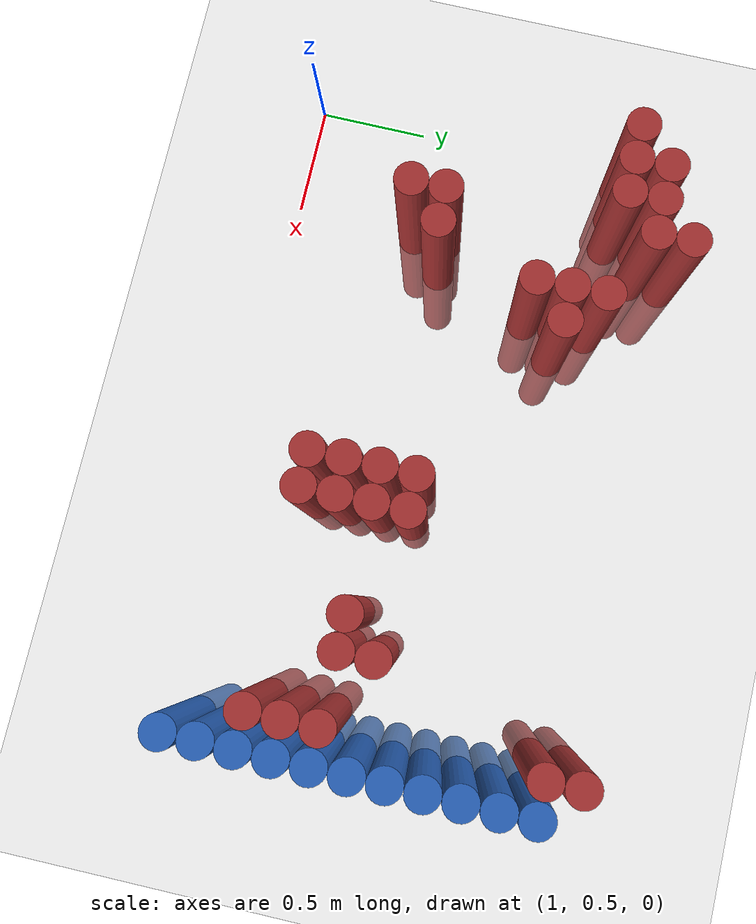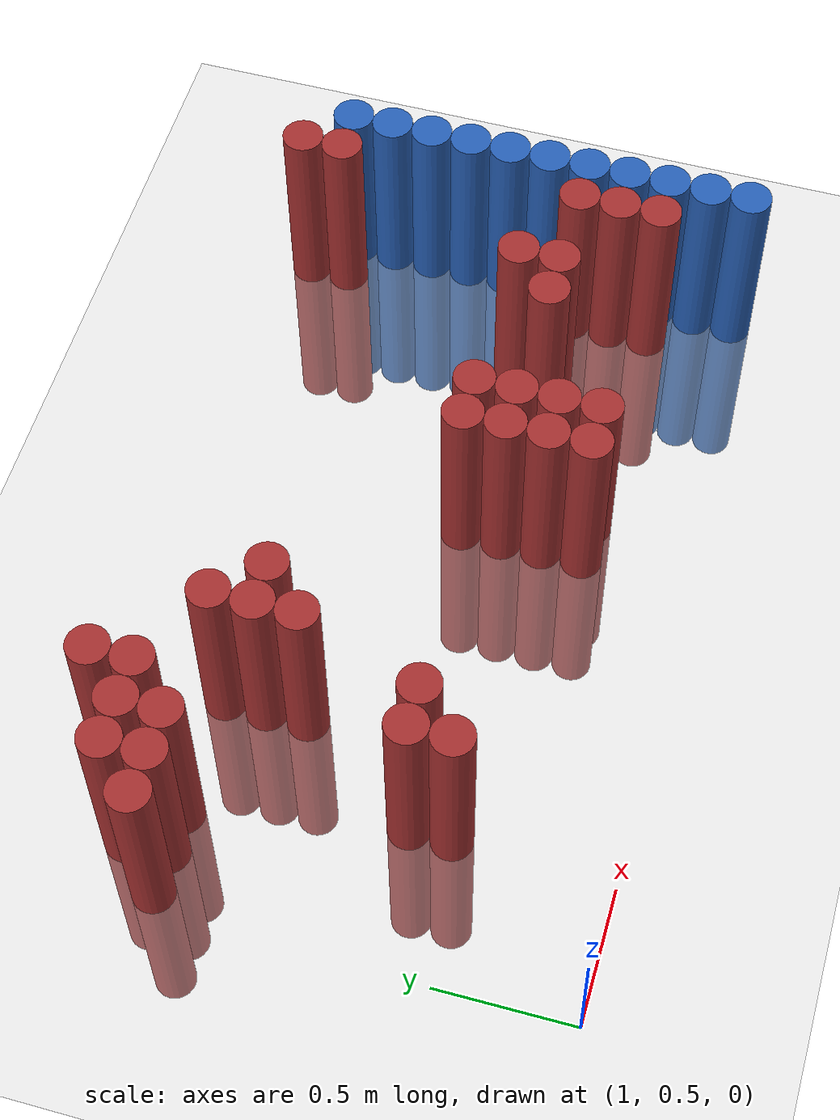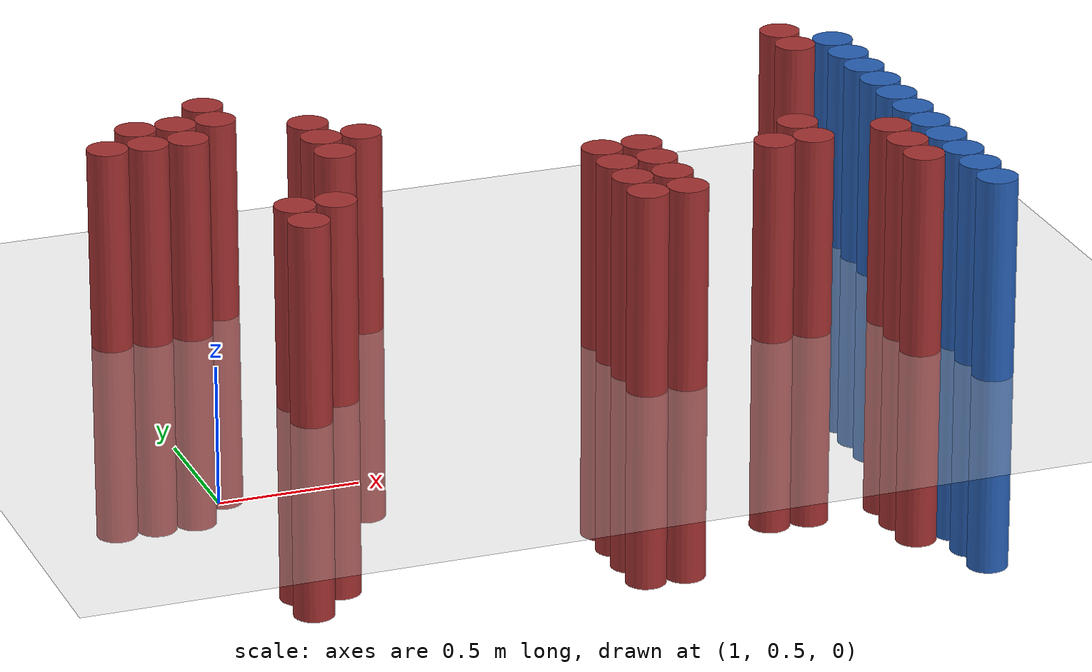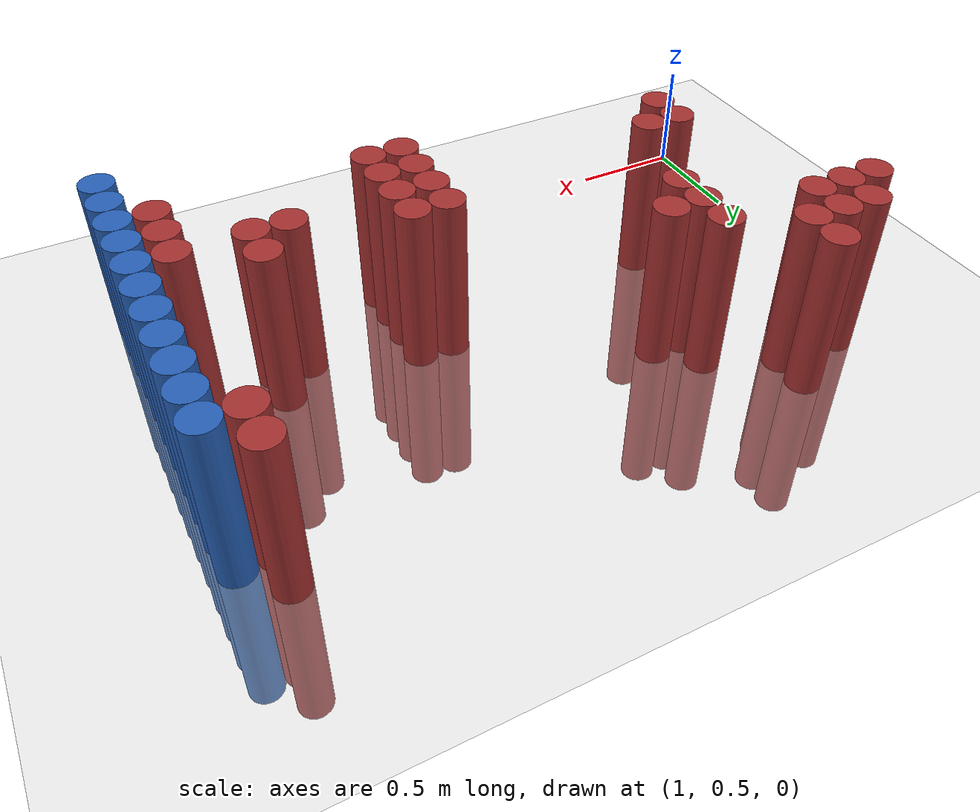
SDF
<sdf version="1.6">
 <world name="default">
  <model name="ground_plane">
   <static>1</static>
   <link name="link">
    <collision name="collision">
     <geometry><plane><normal>0 0 1</normal><size>100 100</size></plane></geometry>
     <surface><friction><ode><mu>100</mu><mu2>50</mu2></ode></friction></surface>
    </collision>
    <visual name="visual">
     <cast_shadows>0</cast_shadows>
     <geometry><plane><normal>0 0 1</normal><size>100 100</size></plane></geometry>
     <material>
      <script><uri>file://media/materials/scripts/gazebo.material</uri><name>Gazebo/Grey</name></script>
     </material>
    </visual>
   </link>
  </model>
  <model name="unit_cylinder_124">
   <static>1</static>
   <pose>3.925000 0.775000 0.000000 0.000000 0.000000 0.000000</pose>
   <link name="link">
    <inertial>
     <mass>1</mass>
     <inertia><ixx>0.145833</ixx><ixy>0</ixy><ixz>0</ixz><iyy>0.145833</iyy><iyz>0</iyz><izz>0.125</izz></inertia>
    </inertial>
    <collision name="collision">
     <geometry><cylinder><radius>0.075000</radius><length>1.5</length></cylinder></geometry>
    </collision>
    <visual name="visual">
     <geometry><cylinder><radius>0.075000</radius><length>1.5</length></cylinder></geometry>
     <material>
      <ambient>0.152000 0.379000 0.720000 1</ambient>
      <diffuse>0.152000 0.379000 0.720000 1</diffuse>
     </material>
     <material>
      <script><name>Gazebo/Grey</name><uri>file://media/materials/scripts/gazebo.material</uri></script>
     </material>
    </visual>
   </link>
  </model>
  <model name="unit_cylinder_126">
   <static>1</static>
   <pose>3.925000 0.925000 0.000000 0.000000 0.000000 0.000000</pose>
   <link name="link">
    <inertial>
     <mass>1</mass>
     <inertia><ixx>0.145833</ixx><ixy>0</ixy><ixz>0</ixz><iyy>0.145833</iyy><iyz>0</iyz><izz>0.125</izz></inertia>
    </inertial>
    <collision name="collision">
     <geometry><cylinder><radius>0.075000</radius><length>1.5</length></cylinder></geometry>
    </collision>
    <visual name="visual">
     <geometry><cylinder><radius>0.075000</radius><length>1.5</length></cylinder></geometry>
     <material>
      <ambient>0.152000 0.379000 0.720000 1</ambient>
      <diffuse>0.152000 0.379000 0.720000 1</diffuse>
     </material>
     <material>
      <script><name>Gazebo/Grey</name><uri>file://media/materials/scripts/gazebo.material</uri></script>
     </material>
    </visual>
   </link>
  </model>
  <model name="unit_cylinder_128">
   <static>1</static>
   <pose>3.925000 1.075000 0.000000 0.000000 0.000000 0.000000</pose>
   <link name="link">
    <inertial>
     <mass>1</mass>
     <inertia><ixx>0.145833</ixx><ixy>0</ixy><ixz>0</ixz><iyy>0.145833</iyy><iyz>0</iyz><izz>0.125</izz></inertia>
    </inertial>
    <collision name="collision">
     <geometry><cylinder><radius>0.075000</radius><length>1.5</length></cylinder></geometry>
    </collision>
    <visual name="visual">
     <geometry><cylinder><radius>0.075000</radius><length>1.5</length></cylinder></geometry>
     <material>
      <ambient>0.152000 0.379000 0.720000 1</ambient>
      <diffuse>0.152000 0.379000 0.720000 1</diffuse>
     </material>
     <material>
      <script><name>Gazebo/Grey</name><uri>file://media/materials/scripts/gazebo.material</uri></script>
     </material>
    </visual>
   </link>
  </model>
  <model name="unit_cylinder_130">
   <static>1</static>
   <pose>3.925000 1.225000 0.000000 0.000000 0.000000 0.000000</pose>
   <link name="link">
    <inertial>
     <mass>1</mass>
     <inertia><ixx>0.145833</ixx><ixy>0</ixy><ixz>0</ixz><iyy>0.145833</iyy><iyz>0</iyz><izz>0.125</izz></inertia>
    </inertial>
    <collision name="collision">
     <geometry><cylinder><radius>0.075000</radius><length>1.5</length></cylinder></geometry>
    </collision>
    <visual name="visual">
     <geometry><cylinder><radius>0.075000</radius><length>1.5</length></cylinder></geometry>
     <material>
      <ambient>0.152000 0.379000 0.720000 1</ambient>
      <diffuse>0.152000 0.379000 0.720000 1</diffuse>
     </material>
     <material>
      <script><name>Gazebo/Grey</name><uri>file://media/materials/scripts/gazebo.material</uri></script>
     </material>
    </visual>
   </link>
  </model>
  <model name="unit_cylinder_132">
   <static>1</static>
   <pose>3.925000 1.375000 0.000000 0.000000 0.000000 0.000000</pose>
   <link name="link">
    <inertial>
     <mass>1</mass>
     <inertia><ixx>0.145833</ixx><ixy>0</ixy><ixz>0</ixz><iyy>0.145833</iyy><iyz>0</iyz><izz>0.125</izz></inertia>
    </inertial>
    <collision name="collision">
     <geometry><cylinder><radius>0.075000</radius><length>1.5</length></cylinder></geometry>
    </collision>
    <visual name="visual">
     <geometry><cylinder><radius>0.075000</radius><length>1.5</length></cylinder></geometry>
     <material>
      <ambient>0.152000 0.379000 0.720000 1</ambient>
      <diffuse>0.152000 0.379000 0.720000 1</diffuse>
     </material>
     <material>
      <script><name>Gazebo/Grey</name><uri>file://media/materials/scripts/gazebo.material</uri></script>
     </material>
    </visual>
   </link>
  </model>
  <model name="unit_cylinder_134">
   <static>1</static>
   <pose>3.925000 1.525000 0.000000 0.000000 0.000000 0.000000</pose>
   <link name="link">
    <inertial>
     <mass>1</mass>
     <inertia><ixx>0.145833</ixx><ixy>0</ixy><ixz>0</ixz><iyy>0.145833</iyy><iyz>0</iyz><izz>0.125</izz></inertia>
    </inertial>
    <collision name="collision">
     <geometry><cylinder><radius>0.075000</radius><length>1.5</length></cylinder></geometry>
    </collision>
    <visual name="visual">
     <geometry><cylinder><radius>0.075000</radius><length>1.5</length></cylinder></geometry>
     <material>
      <ambient>0.152000 0.379000 0.720000 1</ambient>
      <diffuse>0.152000 0.379000 0.720000 1</diffuse>
     </material>
     <material>
      <script><name>Gazebo/Grey</name><uri>file://media/materials/scripts/gazebo.material</uri></script>
     </material>
    </visual>
   </link>
  </model>
  <model name="unit_cylinder_136">
   <static>1</static>
   <pose>3.925000 1.675000 0.000000 0.000000 0.000000 0.000000</pose>
   <link name="link">
    <inertial>
     <mass>1</mass>
     <inertia><ixx>0.145833</ixx><ixy>0</ixy><ixz>0</ixz><iyy>0.145833</iyy><iyz>0</iyz><izz>0.125</izz></inertia>
    </inertial>
    <collision name="collision">
     <geometry><cylinder><radius>0.075000</radius><length>1.5</length></cylinder></geometry>
    </collision>
    <visual name="visual">
     <geometry><cylinder><radius>0.075000</radius><length>1.5</length></cylinder></geometry>
     <material>
      <ambient>0.152000 0.379000 0.720000 1</ambient>
      <diffuse>0.152000 0.379000 0.720000 1</diffuse>
     </material>
     <material>
      <script><name>Gazebo/Grey</name><uri>file://media/materials/scripts/gazebo.material</uri></script>
     </material>
    </visual>
   </link>
  </model>
  <model name="unit_cylinder_138">
   <static>1</static>
   <pose>3.925000 1.825000 0.000000 0.000000 0.000000 0.000000</pose>
   <link name="link">
    <inertial>
     <mass>1</mass>
     <inertia><ixx>0.145833</ixx><ixy>0</ixy><ixz>0</ixz><iyy>0.145833</iyy><iyz>0</iyz><izz>0.125</izz></inertia>
    </inertial>
    <collision name="collision">
     <geometry><cylinder><radius>0.075000</radius><length>1.5</length></cylinder></geometry>
    </collision>
    <visual name="visual">
     <geometry><cylinder><radius>0.075000</radius><length>1.5</length></cylinder></geometry>
     <material>
      <ambient>0.152000 0.379000 0.720000 1</ambient>
      <diffuse>0.152000 0.379000 0.720000 1</diffuse>
     </material>
     <material>
      <script><name>Gazebo/Grey</name><uri>file://media/materials/scripts/gazebo.material</uri></script>
     </material>
    </visual>
   </link>
  </model>
  <model name="unit_cylinder_140">
   <static>1</static>
   <pose>3.925000 1.975000 0.000000 0.000000 0.000000 0.000000</pose>
   <link name="link">
    <inertial>
     <mass>1</mass>
     <inertia><ixx>0.145833</ixx><ixy>0</ixy><ixz>0</ixz><iyy>0.145833</iyy><iyz>0</iyz><izz>0.125</izz></inertia>
    </inertial>
    <collision name="collision">
     <geometry><cylinder><radius>0.075000</radius><length>1.5</length></cylinder></geometry>
    </collision>
    <visual name="visual">
     <geometry><cylinder><radius>0.075000</radius><length>1.5</length></cylinder></geometry>
     <material>
      <ambient>0.152000 0.379000 0.720000 1</ambient>
      <diffuse>0.152000 0.379000 0.720000 1</diffuse>
     </material>
     <material>
      <script><name>Gazebo/Grey</name><uri>file://media/materials/scripts/gazebo.material</uri></script>
     </material>
    </visual>
   </link>
  </model>
  <model name="unit_cylinder_142">
   <static>1</static>
   <pose>3.925000 2.125000 0.000000 0.000000 0.000000 0.000000</pose>
   <link name="link">
    <inertial>
     <mass>1</mass>
     <inertia><ixx>0.145833</ixx><ixy>0</ixy><ixz>0</ixz><iyy>0.145833</iyy><iyz>0</iyz><izz>0.125</izz></inertia>
    </inertial>
    <collision name="collision">
     <geometry><cylinder><radius>0.075000</radius><length>1.5</length></cylinder></geometry>
    </collision>
    <visual name="visual">
     <geometry><cylinder><radius>0.075000</radius><length>1.5</length></cylinder></geometry>
     <material>
      <ambient>0.152000 0.379000 0.720000 1</ambient>
      <diffuse>0.152000 0.379000 0.720000 1</diffuse>
     </material>
     <material>
      <script><name>Gazebo/Grey</name><uri>file://media/materials/scripts/gazebo.material</uri></script>
     </material>
    </visual>
   </link>
  </model>
  <model name="unit_cylinder_418">
   <static>1</static>
   <pose>1.075000 1.975000 0.000000 0.000000 0.000000 0.000000</pose>
   <link name="link">
    <inertial>
     <mass>1</mass>
     <inertia><ixx>0.145833</ixx><ixy>0</ixy><ixz>0</ixz><iyy>0.145833</iyy><iyz>0</iyz><izz>0.125</izz></inertia>
    </inertial>
    <collision name="collision">
     <geometry><cylinder><radius>0.075000</radius><length>1.5</length></cylinder></geometry>
    </collision>
    <visual name="visual">
     <geometry><cylinder><radius>0.075000</radius><length>1.5</length></cylinder></geometry>
     <material>
      <ambient>0.648000 0.192000 0.192000 1</ambient>
      <diffuse>0.648000 0.192000 0.192000 1</diffuse>
     </material>
     <material>
      <script><name>Gazebo/Grey</name><uri>file://media/materials/scripts/gazebo.material</uri></script>
     </material>
    </visual>
   </link>
  </model>
  <model name="unit_cylinder_420">
   <static>1</static>
   <pose>1.225000 1.975000 0.000000 0.000000 0.000000 0.000000</pose>
   <link name="link">
    <inertial>
     <mass>1</mass>
     <inertia><ixx>0.145833</ixx><ixy>0</ixy><ixz>0</ixz><iyy>0.145833</iyy><iyz>0</iyz><izz>0.125</izz></inertia>
    </inertial>
    <collision name="collision">
     <geometry><cylinder><radius>0.075000</radius><length>1.5</length></cylinder></geometry>
    </collision>
    <visual name="visual">
     <geometry><cylinder><radius>0.075000</radius><length>1.5</length></cylinder></geometry>
     <material>
      <ambient>0.648000 0.192000 0.192000 1</ambient>
      <diffuse>0.648000 0.192000 0.192000 1</diffuse>
     </material>
     <material>
      <script><name>Gazebo/Grey</name><uri>file://media/materials/scripts/gazebo.material</uri></script>
     </material>
    </visual>
   </link>
  </model>
  <model name="unit_cylinder_421">
   <static>1</static>
   <pose>1.225000 2.125000 0.000000 0.000000 0.000000 0.000000</pose>
   <link name="link">
    <inertial>
     <mass>1</mass>
     <inertia><ixx>0.145833</ixx><ixy>0</ixy><ixz>0</ixz><iyy>0.145833</iyy><iyz>0</iyz><izz>0.125</izz></inertia>
    </inertial>
    <collision name="collision">
     <geometry><cylinder><radius>0.075000</radius><length>1.5</length></cylinder></geometry>
    </collision>
    <visual name="visual">
     <geometry><cylinder><radius>0.075000</radius><length>1.5</length></cylinder></geometry>
     <material>
      <ambient>0.648000 0.192000 0.192000 1</ambient>
      <diffuse>0.648000 0.192000 0.192000 1</diffuse>
     </material>
     <material>
      <script><name>Gazebo/Grey</name><uri>file://media/materials/scripts/gazebo.material</uri></script>
     </material>
    </visual>
   </link>
  </model>
  <model name="unit_cylinder_422">
   <static>1</static>
   <pose>1.375000 1.975000 0.000000 0.000000 0.000000 0.000000</pose>
   <link name="link">
    <inertial>
     <mass>1</mass>
     <inertia><ixx>0.145833</ixx><ixy>0</ixy><ixz>0</ixz><iyy>0.145833</iyy><iyz>0</iyz><izz>0.125</izz></inertia>
    </inertial>
    <collision name="collision">
     <geometry><cylinder><radius>0.075000</radius><length>1.5</length></cylinder></geometry>
    </collision>
    <visual name="visual">
     <geometry><cylinder><radius>0.075000</radius><length>1.5</length></cylinder></geometry>
     <material>
      <ambient>0.648000 0.192000 0.192000 1</ambient>
      <diffuse>0.648000 0.192000 0.192000 1</diffuse>
     </material>
     <material>
      <script><name>Gazebo/Grey</name><uri>file://media/materials/scripts/gazebo.material</uri></script>
     </material>
    </visual>
   </link>
  </model>
  <model name="unit_cylinder_423">
   <static>1</static>
   <pose>1.375000 2.125000 0.000000 0.000000 0.000000 0.000000</pose>
   <link name="link">
    <inertial>
     <mass>1</mass>
     <inertia><ixx>0.145833</ixx><ixy>0</ixy><ixz>0</ixz><iyy>0.145833</iyy><iyz>0</iyz><izz>0.125</izz></inertia>
    </inertial>
    <collision name="collision">
     <geometry><cylinder><radius>0.075000</radius><length>1.5</length></cylinder></geometry>
    </collision>
    <visual name="visual">
     <geometry><cylinder><radius>0.075000</radius><length>1.5</length></cylinder></geometry>
     <material>
      <ambient>0.648000 0.192000 0.192000 1</ambient>
      <diffuse>0.648000 0.192000 0.192000 1</diffuse>
     </material>
     <material>
      <script><name>Gazebo/Grey</name><uri>file://media/materials/scripts/gazebo.material</uri></script>
     </material>
    </visual>
   </link>
  </model>
  <model name="unit_cylinder_424">
   <static>1</static>
   <pose>1.525000 1.075000 0.000000 0.000000 0.000000 0.000000</pose>
   <link name="link">
    <inertial>
     <mass>1</mass>
     <inertia><ixx>0.145833</ixx><ixy>0</ixy><ixz>0</ixz><iyy>0.145833</iyy><iyz>0</iyz><izz>0.125</izz></inertia>
    </inertial>
    <collision name="collision">
     <geometry><cylinder><radius>0.075000</radius><length>1.5</length></cylinder></geometry>
    </collision>
    <visual name="visual">
     <geometry><cylinder><radius>0.075000</radius><length>1.5</length></cylinder></geometry>
     <material>
      <ambient>0.648000 0.192000 0.192000 1</ambient>
      <diffuse>0.648000 0.192000 0.192000 1</diffuse>
     </material>
     <material>
      <script><name>Gazebo/Grey</name><uri>file://media/materials/scripts/gazebo.material</uri></script>
     </material>
    </visual>
   </link>
  </model>
  <model name="unit_cylinder_425">
   <static>1</static>
   <pose>1.525000 1.225000 0.000000 0.000000 0.000000 0.000000</pose>
   <link name="link">
    <inertial>
     <mass>1</mass>
     <inertia><ixx>0.145833</ixx><ixy>0</ixy><ixz>0</ixz><iyy>0.145833</iyy><iyz>0</iyz><izz>0.125</izz></inertia>
    </inertial>
    <collision name="collision">
     <geometry><cylinder><radius>0.075000</radius><length>1.5</length></cylinder></geometry>
    </collision>
    <visual name="visual">
     <geometry><cylinder><radius>0.075000</radius><length>1.5</length></cylinder></geometry>
     <material>
      <ambient>0.648000 0.192000 0.192000 1</ambient>
      <diffuse>0.648000 0.192000 0.192000 1</diffuse>
     </material>
     <material>
      <script><name>Gazebo/Grey</name><uri>file://media/materials/scripts/gazebo.material</uri></script>
     </material>
    </visual>
   </link>
  </model>
  <model name="unit_cylinder_426">
   <static>1</static>
   <pose>1.525000 2.125000 0.000000 0.000000 0.000000 0.000000</pose>
   <link name="link">
    <inertial>
     <mass>1</mass>
     <inertia><ixx>0.145833</ixx><ixy>0</ixy><ixz>0</ixz><iyy>0.145833</iyy><iyz>0</iyz><izz>0.125</izz></inertia>
    </inertial>
    <collision name="collision">
     <geometry><cylinder><radius>0.075000</radius><length>1.5</length></cylinder></geometry>
    </collision>
    <visual name="visual">
     <geometry><cylinder><radius>0.075000</radius><length>1.5</length></cylinder></geometry>
     <material>
      <ambient>0.648000 0.192000 0.192000 1</ambient>
      <diffuse>0.648000 0.192000 0.192000 1</diffuse>
     </material>
     <material>
      <script><name>Gazebo/Grey</name><uri>file://media/materials/scripts/gazebo.material</uri></script>
     </material>
    </visual>
   </link>
  </model>
  <model name="unit_cylinder_427">
   <static>1</static>
   <pose>1.525000 2.275000 0.000000 0.000000 0.000000 0.000000</pose>
   <link name="link">
    <inertial>
     <mass>1</mass>
     <inertia><ixx>0.145833</ixx><ixy>0</ixy><ixz>0</ixz><iyy>0.145833</iyy><iyz>0</iyz><izz>0.125</izz></inertia>
    </inertial>
    <collision name="collision">
     <geometry><cylinder><radius>0.075000</radius><length>1.5</length></cylinder></geometry>
    </collision>
    <visual name="visual">
     <geometry><cylinder><radius>0.075000</radius><length>1.5</length></cylinder></geometry>
     <material>
      <ambient>0.648000 0.192000 0.192000 1</ambient>
      <diffuse>0.648000 0.192000 0.192000 1</diffuse>
     </material>
     <material>
      <script><name>Gazebo/Grey</name><uri>file://media/materials/scripts/gazebo.material</uri></script>
     </material>
    </visual>
   </link>
  </model>
  <model name="unit_cylinder_428">
   <static>1</static>
   <pose>1.675000 1.225000 0.000000 0.000000 0.000000 0.000000</pose>
   <link name="link">
    <inertial>
     <mass>1</mass>
     <inertia><ixx>0.145833</ixx><ixy>0</ixy><ixz>0</ixz><iyy>0.145833</iyy><iyz>0</iyz><izz>0.125</izz></inertia>
    </inertial>
    <collision name="collision">
     <geometry><cylinder><radius>0.075000</radius><length>1.5</length></cylinder></geometry>
    </collision>
    <visual name="visual">
     <geometry><cylinder><radius>0.075000</radius><length>1.5</length></cylinder></geometry>
     <material>
      <ambient>0.648000 0.192000 0.192000 1</ambient>
      <diffuse>0.648000 0.192000 0.192000 1</diffuse>
     </material>
     <material>
      <script><name>Gazebo/Grey</name><uri>file://media/materials/scripts/gazebo.material</uri></script>
     </material>
    </visual>
   </link>
  </model>
  <model name="unit_cylinder_431">
   <static>1</static>
   <pose>1.825000 1.675000 0.000000 0.000000 0.000000 0.000000</pose>
   <link name="link">
    <inertial>
     <mass>1</mass>
     <inertia><ixx>0.145833</ixx><ixy>0</ixy><ixz>0</ixz><iyy>0.145833</iyy><iyz>0</iyz><izz>0.125</izz></inertia>
    </inertial>
    <collision name="collision">
     <geometry><cylinder><radius>0.075000</radius><length>1.5</length></cylinder></geometry>
    </collision>
    <visual name="visual">
     <geometry><cylinder><radius>0.075000</radius><length>1.5</length></cylinder></geometry>
     <material>
      <ambient>0.648000 0.192000 0.192000 1</ambient>
      <diffuse>0.648000 0.192000 0.192000 1</diffuse>
     </material>
     <material>
      <script><name>Gazebo/Grey</name><uri>file://media/materials/scripts/gazebo.material</uri></script>
     </material>
    </visual>
   </link>
  </model>
  <model name="unit_cylinder_432">
   <static>1</static>
   <pose>1.825000 1.825000 0.000000 0.000000 0.000000 0.000000</pose>
   <link name="link">
    <inertial>
     <mass>1</mass>
     <inertia><ixx>0.145833</ixx><ixy>0</ixy><ixz>0</ixz><iyy>0.145833</iyy><iyz>0</iyz><izz>0.125</izz></inertia>
    </inertial>
    <collision name="collision">
     <geometry><cylinder><radius>0.075000</radius><length>1.5</length></cylinder></geometry>
    </collision>
    <visual name="visual">
     <geometry><cylinder><radius>0.075000</radius><length>1.5</length></cylinder></geometry>
     <material>
      <ambient>0.648000 0.192000 0.192000 1</ambient>
      <diffuse>0.648000 0.192000 0.192000 1</diffuse>
     </material>
     <material>
      <script><name>Gazebo/Grey</name><uri>file://media/materials/scripts/gazebo.material</uri></script>
     </material>
    </visual>
   </link>
  </model>
  <model name="unit_cylinder_433">
   <static>1</static>
   <pose>1.825000 1.975000 0.000000 0.000000 0.000000 0.000000</pose>
   <link name="link">
    <inertial>
     <mass>1</mass>
     <inertia><ixx>0.145833</ixx><ixy>0</ixy><ixz>0</ixz><iyy>0.145833</iyy><iyz>0</iyz><izz>0.125</izz></inertia>
    </inertial>
    <collision name="collision">
     <geometry><cylinder><radius>0.075000</radius><length>1.5</length></cylinder></geometry>
    </collision>
    <visual name="visual">
     <geometry><cylinder><radius>0.075000</radius><length>1.5</length></cylinder></geometry>
     <material>
      <ambient>0.648000 0.192000 0.192000 1</ambient>
      <diffuse>0.648000 0.192000 0.192000 1</diffuse>
     </material>
     <material>
      <script><name>Gazebo/Grey</name><uri>file://media/materials/scripts/gazebo.material</uri></script>
     </material>
    </visual>
   </link>
  </model>
  <model name="unit_cylinder_435">
   <static>1</static>
   <pose>1.975000 1.825000 0.000000 0.000000 0.000000 0.000000</pose>
   <link name="link">
    <inertial>
     <mass>1</mass>
     <inertia><ixx>0.145833</ixx><ixy>0</ixy><ixz>0</ixz><iyy>0.145833</iyy><iyz>0</iyz><izz>0.125</izz></inertia>
    </inertial>
    <collision name="collision">
     <geometry><cylinder><radius>0.075000</radius><length>1.5</length></cylinder></geometry>
    </collision>
    <visual name="visual">
     <geometry><cylinder><radius>0.075000</radius><length>1.5</length></cylinder></geometry>
     <material>
      <ambient>0.648000 0.192000 0.192000 1</ambient>
      <diffuse>0.648000 0.192000 0.192000 1</diffuse>
     </material>
     <material>
      <script><name>Gazebo/Grey</name><uri>file://media/materials/scripts/gazebo.material</uri></script>
     </material>
    </visual>
   </link>
  </model>
  <model name="unit_cylinder_443">
   <static>1</static>
   <pose>2.725000 0.925000 0.000000 0.000000 0.000000 0.000000</pose>
   <link name="link">
    <inertial>
     <mass>1</mass>
     <inertia><ixx>0.145833</ixx><ixy>0</ixy><ixz>0</ixz><iyy>0.145833</iyy><iyz>0</iyz><izz>0.125</izz></inertia>
    </inertial>
    <collision name="collision">
     <geometry><cylinder><radius>0.075000</radius><length>1.5</length></cylinder></geometry>
    </collision>
    <visual name="visual">
     <geometry><cylinder><radius>0.075000</radius><length>1.5</length></cylinder></geometry>
     <material>
      <ambient>0.648000 0.192000 0.192000 1</ambient>
      <diffuse>0.648000 0.192000 0.192000 1</diffuse>
     </material>
     <material>
      <script><name>Gazebo/Grey</name><uri>file://media/materials/scripts/gazebo.material</uri></script>
     </material>
    </visual>
   </link>
  </model>
  <model name="unit_cylinder_444">
   <static>1</static>
   <pose>2.725000 1.075000 0.000000 0.000000 0.000000 0.000000</pose>
   <link name="link">
    <inertial>
     <mass>1</mass>
     <inertia><ixx>0.145833</ixx><ixy>0</ixy><ixz>0</ixz><iyy>0.145833</iyy><iyz>0</iyz><izz>0.125</izz></inertia>
    </inertial>
    <collision name="collision">
     <geometry><cylinder><radius>0.075000</radius><length>1.5</length></cylinder></geometry>
    </collision>
    <visual name="visual">
     <geometry><cylinder><radius>0.075000</radius><length>1.5</length></cylinder></geometry>
     <material>
      <ambient>0.648000 0.192000 0.192000 1</ambient>
      <diffuse>0.648000 0.192000 0.192000 1</diffuse>
     </material>
     <material>
      <script><name>Gazebo/Grey</name><uri>file://media/materials/scripts/gazebo.material</uri></script>
     </material>
    </visual>
   </link>
  </model>
  <model name="unit_cylinder_445">
   <static>1</static>
   <pose>2.725000 1.225000 0.000000 0.000000 0.000000 0.000000</pose>
   <link name="link">
    <inertial>
     <mass>1</mass>
     <inertia><ixx>0.145833</ixx><ixy>0</ixy><ixz>0</ixz><iyy>0.145833</iyy><iyz>0</iyz><izz>0.125</izz></inertia>
    </inertial>
    <collision name="collision">
     <geometry><cylinder><radius>0.075000</radius><length>1.5</length></cylinder></geometry>
    </collision>
    <visual name="visual">
     <geometry><cylinder><radius>0.075000</radius><length>1.5</length></cylinder></geometry>
     <material>
      <ambient>0.648000 0.192000 0.192000 1</ambient>
      <diffuse>0.648000 0.192000 0.192000 1</diffuse>
     </material>
     <material>
      <script><name>Gazebo/Grey</name><uri>file://media/materials/scripts/gazebo.material</uri></script>
     </material>
    </visual>
   </link>
  </model>
  <model name="unit_cylinder_446">
   <static>1</static>
   <pose>2.725000 1.375000 0.000000 0.000000 0.000000 0.000000</pose>
   <link name="link">
    <inertial>
     <mass>1</mass>
     <inertia><ixx>0.145833</ixx><ixy>0</ixy><ixz>0</ixz><iyy>0.145833</iyy><iyz>0</iyz><izz>0.125</izz></inertia>
    </inertial>
    <collision name="collision">
     <geometry><cylinder><radius>0.075000</radius><length>1.5</length></cylinder></geometry>
    </collision>
    <visual name="visual">
     <geometry><cylinder><radius>0.075000</radius><length>1.5</length></cylinder></geometry>
     <material>
      <ambient>0.648000 0.192000 0.192000 1</ambient>
      <diffuse>0.648000 0.192000 0.192000 1</diffuse>
     </material>
     <material>
      <script><name>Gazebo/Grey</name><uri>file://media/materials/scripts/gazebo.material</uri></script>
     </material>
    </visual>
   </link>
  </model>
  <model name="unit_cylinder_451">
   <static>1</static>
   <pose>2.875000 0.925000 0.000000 0.000000 0.000000 0.000000</pose>
   <link name="link">
    <inertial>
     <mass>1</mass>
     <inertia><ixx>0.145833</ixx><ixy>0</ixy><ixz>0</ixz><iyy>0.145833</iyy><iyz>0</iyz><izz>0.125</izz></inertia>
    </inertial>
    <collision name="collision">
     <geometry><cylinder><radius>0.075000</radius><length>1.5</length></cylinder></geometry>
    </collision>
    <visual name="visual">
     <geometry><cylinder><radius>0.075000</radius><length>1.5</length></cylinder></geometry>
     <material>
      <ambient>0.648000 0.192000 0.192000 1</ambient>
      <diffuse>0.648000 0.192000 0.192000 1</diffuse>
     </material>
     <material>
      <script><name>Gazebo/Grey</name><uri>file://media/materials/scripts/gazebo.material</uri></script>
     </material>
    </visual>
   </link>
  </model>
  <model name="unit_cylinder_452">
   <static>1</static>
   <pose>2.875000 1.075000 0.000000 0.000000 0.000000 0.000000</pose>
   <link name="link">
    <inertial>
     <mass>1</mass>
     <inertia><ixx>0.145833</ixx><ixy>0</ixy><ixz>0</ixz><iyy>0.145833</iyy><iyz>0</iyz><izz>0.125</izz></inertia>
    </inertial>
    <collision name="collision">
     <geometry><cylinder><radius>0.075000</radius><length>1.5</length></cylinder></geometry>
    </collision>
    <visual name="visual">
     <geometry><cylinder><radius>0.075000</radius><length>1.5</length></cylinder></geometry>
     <material>
      <ambient>0.648000 0.192000 0.192000 1</ambient>
      <diffuse>0.648000 0.192000 0.192000 1</diffuse>
     </material>
     <material>
      <script><name>Gazebo/Grey</name><uri>file://media/materials/scripts/gazebo.material</uri></script>
     </material>
    </visual>
   </link>
  </model>
  <model name="unit_cylinder_453">
   <static>1</static>
   <pose>2.875000 1.225000 0.000000 0.000000 0.000000 0.000000</pose>
   <link name="link">
    <inertial>
     <mass>1</mass>
     <inertia><ixx>0.145833</ixx><ixy>0</ixy><ixz>0</ixz><iyy>0.145833</iyy><iyz>0</iyz><izz>0.125</izz></inertia>
    </inertial>
    <collision name="collision">
     <geometry><cylinder><radius>0.075000</radius><length>1.5</length></cylinder></geometry>
    </collision>
    <visual name="visual">
     <geometry><cylinder><radius>0.075000</radius><length>1.5</length></cylinder></geometry>
     <material>
      <ambient>0.648000 0.192000 0.192000 1</ambient>
      <diffuse>0.648000 0.192000 0.192000 1</diffuse>
     </material>
     <material>
      <script><name>Gazebo/Grey</name><uri>file://media/materials/scripts/gazebo.material</uri></script>
     </material>
    </visual>
   </link>
  </model>
  <model name="unit_cylinder_454">
   <static>1</static>
   <pose>2.875000 1.375000 0.000000 0.000000 0.000000 0.000000</pose>
   <link name="link">
    <inertial>
     <mass>1</mass>
     <inertia><ixx>0.145833</ixx><ixy>0</ixy><ixz>0</ixz><iyy>0.145833</iyy><iyz>0</iyz><izz>0.125</izz></inertia>
    </inertial>
    <collision name="collision">
     <geometry><cylinder><radius>0.075000</radius><length>1.5</length></cylinder></geometry>
    </collision>
    <visual name="visual">
     <geometry><cylinder><radius>0.075000</radius><length>1.5</length></cylinder></geometry>
     <material>
      <ambient>0.648000 0.192000 0.192000 1</ambient>
      <diffuse>0.648000 0.192000 0.192000 1</diffuse>
     </material>
     <material>
      <script><name>Gazebo/Grey</name><uri>file://media/materials/scripts/gazebo.material</uri></script>
     </material>
    </visual>
   </link>
  </model>
  <model name="unit_cylinder_461">
   <static>1</static>
   <pose>3.325000 1.225000 0.000000 0.000000 0.000000 0.000000</pose>
   <link name="link">
    <inertial>
     <mass>1</mass>
     <inertia><ixx>0.145833</ixx><ixy>0</ixy><ixz>0</ixz><iyy>0.145833</iyy><iyz>0</iyz><izz>0.125</izz></inertia>
    </inertial>
    <collision name="collision">
     <geometry><cylinder><radius>0.075000</radius><length>1.5</length></cylinder></geometry>
    </collision>
    <visual name="visual">
     <geometry><cylinder><radius>0.075000</radius><length>1.5</length></cylinder></geometry>
     <material>
      <ambient>0.648000 0.192000 0.192000 1</ambient>
      <diffuse>0.648000 0.192000 0.192000 1</diffuse>
     </material>
     <material>
      <script><name>Gazebo/Grey</name><uri>file://media/materials/scripts/gazebo.material</uri></script>
     </material>
    </visual>
   </link>
  </model>
  <model name="unit_cylinder_466">
   <static>1</static>
   <pose>3.475000 1.225000 0.000000 0.000000 0.000000 0.000000</pose>
   <link name="link">
    <inertial>
     <mass>1</mass>
     <inertia><ixx>0.145833</ixx><ixy>0</ixy><ixz>0</ixz><iyy>0.145833</iyy><iyz>0</iyz><izz>0.125</izz></inertia>
    </inertial>
    <collision name="collision">
     <geometry><cylinder><radius>0.075000</radius><length>1.5</length></cylinder></geometry>
    </collision>
    <visual name="visual">
     <geometry><cylinder><radius>0.075000</radius><length>1.5</length></cylinder></geometry>
     <material>
      <ambient>0.648000 0.192000 0.192000 1</ambient>
      <diffuse>0.648000 0.192000 0.192000 1</diffuse>
     </material>
     <material>
      <script><name>Gazebo/Grey</name><uri>file://media/materials/scripts/gazebo.material</uri></script>
     </material>
    </visual>
   </link>
  </model>
  <model name="unit_cylinder_467">
   <static>1</static>
   <pose>3.475000 1.375000 0.000000 0.000000 0.000000 0.000000</pose>
   <link name="link">
    <inertial>
     <mass>1</mass>
     <inertia><ixx>0.145833</ixx><ixy>0</ixy><ixz>0</ixz><iyy>0.145833</iyy><iyz>0</iyz><izz>0.125</izz></inertia>
    </inertial>
    <collision name="collision">
     <geometry><cylinder><radius>0.075000</radius><length>1.5</length></cylinder></geometry>
    </collision>
    <visual name="visual">
     <geometry><cylinder><radius>0.075000</radius><length>1.5</length></cylinder></geometry>
     <material>
      <ambient>0.648000 0.192000 0.192000 1</ambient>
      <diffuse>0.648000 0.192000 0.192000 1</diffuse>
     </material>
     <material>
      <script><name>Gazebo/Grey</name><uri>file://media/materials/scripts/gazebo.material</uri></script>
     </material>
    </visual>
   </link>
  </model>
  <model name="unit_cylinder_487">
   <static>1</static>
   <pose>3.775000 0.925000 0.000000 0.000000 0.000000 0.000000</pose>
   <link name="link">
    <inertial>
     <mass>1</mass>
     <inertia><ixx>0.145833</ixx><ixy>0</ixy><ixz>0</ixz><iyy>0.145833</iyy><iyz>0</iyz><izz>0.125</izz></inertia>
    </inertial>
    <collision name="collision">
     <geometry><cylinder><radius>0.075000</radius><length>1.5</length></cylinder></geometry>
    </collision>
    <visual name="visual">
     <geometry><cylinder><radius>0.075000</radius><length>1.5</length></cylinder></geometry>
     <material>
      <ambient>0.648000 0.192000 0.192000 1</ambient>
      <diffuse>0.648000 0.192000 0.192000 1</diffuse>
     </material>
     <material>
      <script><name>Gazebo/Grey</name><uri>file://media/materials/scripts/gazebo.material</uri></script>
     </material>
    </visual>
   </link>
  </model>
  <model name="unit_cylinder_488">
   <static>1</static>
   <pose>3.775000 1.075000 0.000000 0.000000 0.000000 0.000000</pose>
   <link name="link">
    <inertial>
     <mass>1</mass>
     <inertia><ixx>0.145833</ixx><ixy>0</ixy><ixz>0</ixz><iyy>0.145833</iyy><iyz>0</iyz><izz>0.125</izz></inertia>
    </inertial>
    <collision name="collision">
     <geometry><cylinder><radius>0.075000</radius><length>1.5</length></cylinder></geometry>
    </collision>
    <visual name="visual">
     <geometry><cylinder><radius>0.075000</radius><length>1.5</length></cylinder></geometry>
     <material>
      <ambient>0.648000 0.192000 0.192000 1</ambient>
      <diffuse>0.648000 0.192000 0.192000 1</diffuse>
     </material>
     <material>
      <script><name>Gazebo/Grey</name><uri>file://media/materials/scripts/gazebo.material</uri></script>
     </material>
    </visual>
   </link>
  </model>
  <model name="unit_cylinder_489">
   <static>1</static>
   <pose>3.775000 1.225000 0.000000 0.000000 0.000000 0.000000</pose>
   <link name="link">
    <inertial>
     <mass>1</mass>
     <inertia><ixx>0.145833</ixx><ixy>0</ixy><ixz>0</ixz><iyy>0.145833</iyy><iyz>0</iyz><izz>0.125</izz></inertia>
    </inertial>
    <collision name="collision">
     <geometry><cylinder><radius>0.075000</radius><length>1.5</length></cylinder></geometry>
    </collision>
    <visual name="visual">
     <geometry><cylinder><radius>0.075000</radius><length>1.5</length></cylinder></geometry>
     <material>
      <ambient>0.648000 0.192000 0.192000 1</ambient>
      <diffuse>0.648000 0.192000 0.192000 1</diffuse>
     </material>
     <material>
      <script><name>Gazebo/Grey</name><uri>file://media/materials/scripts/gazebo.material</uri></script>
     </material>
    </visual>
   </link>
  </model>
  <model name="unit_cylinder_490">
   <static>1</static>
   <pose>3.775000 2.125000 0.000000 0.000000 0.000000 0.000000</pose>
   <link name="link">
    <inertial>
     <mass>1</mass>
     <inertia><ixx>0.145833</ixx><ixy>0</ixy><ixz>0</ixz><iyy>0.145833</iyy><iyz>0</iyz><izz>0.125</izz></inertia>
    </inertial>
    <collision name="collision">
     <geometry><cylinder><radius>0.075000</radius><length>1.5</length></cylinder></geometry>
    </collision>
    <visual name="visual">
     <geometry><cylinder><radius>0.075000</radius><length>1.5</length></cylinder></geometry>
     <material>
      <ambient>0.648000 0.192000 0.192000 1</ambient>
      <diffuse>0.648000 0.192000 0.192000 1</diffuse>
     </material>
     <material>
      <script><name>Gazebo/Grey</name><uri>file://media/materials/scripts/gazebo.material</uri></script>
     </material>
    </visual>
   </link>
  </model>
  <model name="unit_cylinder_491">
   <static>1</static>
   <pose>3.775000 2.275000 0.000000 0.000000 0.000000 0.000000</pose>
   <link name="link">
    <inertial>
     <mass>1</mass>
     <inertia><ixx>0.145833</ixx><ixy>0</ixy><ixz>0</ixz><iyy>0.145833</iyy><iyz>0</iyz><izz>0.125</izz></inertia>
    </inertial>
    <collision name="collision">
     <geometry><cylinder><radius>0.075000</radius><length>1.5</length></cylinder></geometry>
    </collision>
    <visual name="visual">
     <geometry><cylinder><radius>0.075000</radius><length>1.5</length></cylinder></geometry>
     <material>
      <ambient>0.648000 0.192000 0.192000 1</ambient>
      <diffuse>0.648000 0.192000 0.192000 1</diffuse>
     </material>
     <material>
      <script><name>Gazebo/Grey</name><uri>file://media/materials/scripts/gazebo.material</uri></script>
     </material>
    </visual>
   </link>
  </model>
  <model name="unit_cylinder_522">
   <static>1</static>
   <pose>3.925000 0.625000 0.000000 0.000000 0.000000 0.000000</pose>
   <link name="link">
    <inertial>
     <mass>1</mass>
     <inertia><ixx>0.145833</ixx><ixy>0</ixy><ixz>0</ixz><iyy>0.145833</iyy><iyz>0</iyz><izz>0.125</izz></inertia>
    </inertial>
    <collision name="collision">
     <geometry><cylinder><radius>0.075000</radius><length>1.5</length></cylinder></geometry>
    </collision>
    <visual name="visual">
     <geometry><cylinder><radius>0.075000</radius><length>1.5</length></cylinder></geometry>
     <material>
      <ambient>0.152000 0.379000 0.720000 1</ambient>
      <diffuse>0.152000 0.379000 0.720000 1</diffuse>
     </material>
     <material>
      <script><name>Gazebo/Grey</name><uri>file://media/materials/scripts/gazebo.material</uri></script>
     </material>
    </visual>
   </link>
  </model>
  <model name="unit_cylinder_523">
   <static>1</static>
   <pose>3.925000 0.775000 0.000000 0.000000 0.000000 0.000000</pose>
   <link name="link">
    <inertial>
     <mass>1</mass>
     <inertia><ixx>0.145833</ixx><ixy>0</ixy><ixz>0</ixz><iyy>0.145833</iyy><iyz>0</iyz><izz>0.125</izz></inertia>
    </inertial>
    <collision name="collision">
     <geometry><cylinder><radius>0.075000</radius><length>1.5</length></cylinder></geometry>
    </collision>
    <visual name="visual">
     <geometry><cylinder><radius>0.075000</radius><length>1.5</length></cylinder></geometry>
     <material>
      <ambient>0.152000 0.379000 0.720000 1</ambient>
      <diffuse>0.152000 0.379000 0.720000 1</diffuse>
     </material>
     <material>
      <script><name>Gazebo/Grey</name><uri>file://media/materials/scripts/gazebo.material</uri></script>
     </material>
    </visual>
   </link>
  </model>
  <model name="unit_cylinder_524">
   <static>1</static>
   <pose>3.925000 0.925000 0.000000 0.000000 0.000000 0.000000</pose>
   <link name="link">
    <inertial>
     <mass>1</mass>
     <inertia><ixx>0.145833</ixx><ixy>0</ixy><ixz>0</ixz><iyy>0.145833</iyy><iyz>0</iyz><izz>0.125</izz></inertia>
    </inertial>
    <collision name="collision">
     <geometry><cylinder><radius>0.075000</radius><length>1.5</length></cylinder></geometry>
    </collision>
    <visual name="visual">
     <geometry><cylinder><radius>0.075000</radius><length>1.5</length></cylinder></geometry>
     <material>
      <ambient>0.152000 0.379000 0.720000 1</ambient>
      <diffuse>0.152000 0.379000 0.720000 1</diffuse>
     </material>
     <material>
      <script><name>Gazebo/Grey</name><uri>file://media/materials/scripts/gazebo.material</uri></script>
     </material>
    </visual>
   </link>
  </model>
  <model name="unit_cylinder_525">
   <static>1</static>
   <pose>3.925000 1.075000 0.000000 0.000000 0.000000 0.000000</pose>
   <link name="link">
    <inertial>
     <mass>1</mass>
     <inertia><ixx>0.145833</ixx><ixy>0</ixy><ixz>0</ixz><iyy>0.145833</iyy><iyz>0</iyz><izz>0.125</izz></inertia>
    </inertial>
    <collision name="collision">
     <geometry><cylinder><radius>0.075000</radius><length>1.5</length></cylinder></geometry>
    </collision>
    <visual name="visual">
     <geometry><cylinder><radius>0.075000</radius><length>1.5</length></cylinder></geometry>
     <material>
      <ambient>0.152000 0.379000 0.720000 1</ambient>
      <diffuse>0.152000 0.379000 0.720000 1</diffuse>
     </material>
     <material>
      <script><name>Gazebo/Grey</name><uri>file://media/materials/scripts/gazebo.material</uri></script>
     </material>
    </visual>
   </link>
  </model>
  <model name="unit_cylinder_526">
   <static>1</static>
   <pose>3.925000 1.225000 0.000000 0.000000 0.000000 0.000000</pose>
   <link name="link">
    <inertial>
     <mass>1</mass>
     <inertia><ixx>0.145833</ixx><ixy>0</ixy><ixz>0</ixz><iyy>0.145833</iyy><iyz>0</iyz><izz>0.125</izz></inertia>
    </inertial>
    <collision name="collision">
     <geometry><cylinder><radius>0.075000</radius><length>1.5</length></cylinder></geometry>
    </collision>
    <visual name="visual">
     <geometry><cylinder><radius>0.075000</radius><length>1.5</length></cylinder></geometry>
     <material>
      <ambient>0.152000 0.379000 0.720000 1</ambient>
      <diffuse>0.152000 0.379000 0.720000 1</diffuse>
     </material>
     <material>
      <script><name>Gazebo/Grey</name><uri>file://media/materials/scripts/gazebo.material</uri></script>
     </material>
    </visual>
   </link>
  </model>
  <model name="unit_cylinder_527">
   <static>1</static>
   <pose>3.925000 1.375000 0.000000 0.000000 0.000000 0.000000</pose>
   <link name="link">
    <inertial>
     <mass>1</mass>
     <inertia><ixx>0.145833</ixx><ixy>0</ixy><ixz>0</ixz><iyy>0.145833</iyy><iyz>0</iyz><izz>0.125</izz></inertia>
    </inertial>
    <collision name="collision">
     <geometry><cylinder><radius>0.075000</radius><length>1.5</length></cylinder></geometry>
    </collision>
    <visual name="visual">
     <geometry><cylinder><radius>0.075000</radius><length>1.5</length></cylinder></geometry>
     <material>
      <ambient>0.152000 0.379000 0.720000 1</ambient>
      <diffuse>0.152000 0.379000 0.720000 1</diffuse>
     </material>
     <material>
      <script><name>Gazebo/Grey</name><uri>file://media/materials/scripts/gazebo.material</uri></script>
     </material>
    </visual>
   </link>
  </model>
  <model name="unit_cylinder_528">
   <static>1</static>
   <pose>3.925000 1.525000 0.000000 0.000000 0.000000 0.000000</pose>
   <link name="link">
    <inertial>
     <mass>1</mass>
     <inertia><ixx>0.145833</ixx><ixy>0</ixy><ixz>0</ixz><iyy>0.145833</iyy><iyz>0</iyz><izz>0.125</izz></inertia>
    </inertial>
    <collision name="collision">
     <geometry><cylinder><radius>0.075000</radius><length>1.5</length></cylinder></geometry>
    </collision>
    <visual name="visual">
     <geometry><cylinder><radius>0.075000</radius><length>1.5</length></cylinder></geometry>
     <material>
      <ambient>0.152000 0.379000 0.720000 1</ambient>
      <diffuse>0.152000 0.379000 0.720000 1</diffuse>
     </material>
     <material>
      <script><name>Gazebo/Grey</name><uri>file://media/materials/scripts/gazebo.material</uri></script>
     </material>
    </visual>
   </link>
  </model>
  <model name="unit_cylinder_529">
   <static>1</static>
   <pose>3.925000 1.675000 0.000000 0.000000 0.000000 0.000000</pose>
   <link name="link">
    <inertial>
     <mass>1</mass>
     <inertia><ixx>0.145833</ixx><ixy>0</ixy><ixz>0</ixz><iyy>0.145833</iyy><iyz>0</iyz><izz>0.125</izz></inertia>
    </inertial>
    <collision name="collision">
     <geometry><cylinder><radius>0.075000</radius><length>1.5</length></cylinder></geometry>
    </collision>
    <visual name="visual">
     <geometry><cylinder><radius>0.075000</radius><length>1.5</length></cylinder></geometry>
     <material>
      <ambient>0.152000 0.379000 0.720000 1</ambient>
      <diffuse>0.152000 0.379000 0.720000 1</diffuse>
     </material>
     <material>
      <script><name>Gazebo/Grey</name><uri>file://media/materials/scripts/gazebo.material</uri></script>
     </material>
    </visual>
   </link>
  </model>
  <model name="unit_cylinder_530">
   <static>1</static>
   <pose>3.925000 1.825000 0.000000 0.000000 0.000000 0.000000</pose>
   <link name="link">
    <inertial>
     <mass>1</mass>
     <inertia><ixx>0.145833</ixx><ixy>0</ixy><ixz>0</ixz><iyy>0.145833</iyy><iyz>0</iyz><izz>0.125</izz></inertia>
    </inertial>
    <collision name="collision">
     <geometry><cylinder><radius>0.075000</radius><length>1.5</length></cylinder></geometry>
    </collision>
    <visual name="visual">
     <geometry><cylinder><radius>0.075000</radius><length>1.5</length></cylinder></geometry>
     <material>
      <ambient>0.152000 0.379000 0.720000 1</ambient>
      <diffuse>0.152000 0.379000 0.720000 1</diffuse>
     </material>
     <material>
      <script><name>Gazebo/Grey</name><uri>file://media/materials/scripts/gazebo.material</uri></script>
     </material>
    </visual>
   </link>
  </model>
  <model name="unit_cylinder_531">
   <static>1</static>
   <pose>3.925000 1.975000 0.000000 0.000000 0.000000 0.000000</pose>
   <link name="link">
    <inertial>
     <mass>1</mass>
     <inertia><ixx>0.145833</ixx><ixy>0</ixy><ixz>0</ixz><iyy>0.145833</iyy><iyz>0</iyz><izz>0.125</izz></inertia>
    </inertial>
    <collision name="collision">
     <geometry><cylinder><radius>0.075000</radius><length>1.5</length></cylinder></geometry>
    </collision>
    <visual name="visual">
     <geometry><cylinder><radius>0.075000</radius><length>1.5</length></cylinder></geometry>
     <material>
      <ambient>0.152000 0.379000 0.720000 1</ambient>
      <diffuse>0.152000 0.379000 0.720000 1</diffuse>
     </material>
     <material>
      <script><name>Gazebo/Grey</name><uri>file://media/materials/scripts/gazebo.material</uri></script>
     </material>
    </visual>
   </link>
  </model>
  <model name="unit_cylinder_532">
   <static>1</static>
   <pose>3.925000 2.125000 0.000000 0.000000 0.000000 0.000000</pose>
   <link name="link">
    <inertial>
     <mass>1</mass>
     <inertia><ixx>0.145833</ixx><ixy>0</ixy><ixz>0</ixz><iyy>0.145833</iyy><iyz>0</iyz><izz>0.125</izz></inertia>
    </inertial>
    <collision name="collision">
     <geometry><cylinder><radius>0.075000</radius><length>1.5</length></cylinder></geometry>
    </collision>
    <visual name="visual">
     <geometry><cylinder><radius>0.075000</radius><length>1.5</length></cylinder></geometry>
     <material>
      <ambient>0.152000 0.379000 0.720000 1</ambient>
      <diffuse>0.152000 0.379000 0.720000 1</diffuse>
     </material>
     <material>
      <script><name>Gazebo/Grey</name><uri>file://media/materials/scripts/gazebo.material</uri></script>
     </material>
    </visual>
   </link>
  </model>
 </world>
</sdf>
